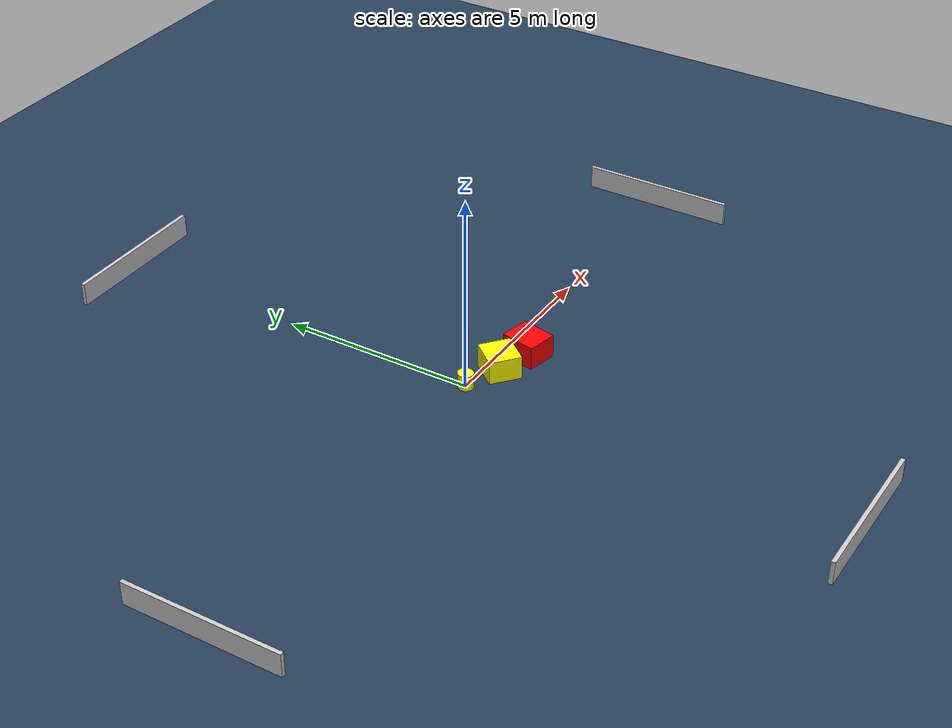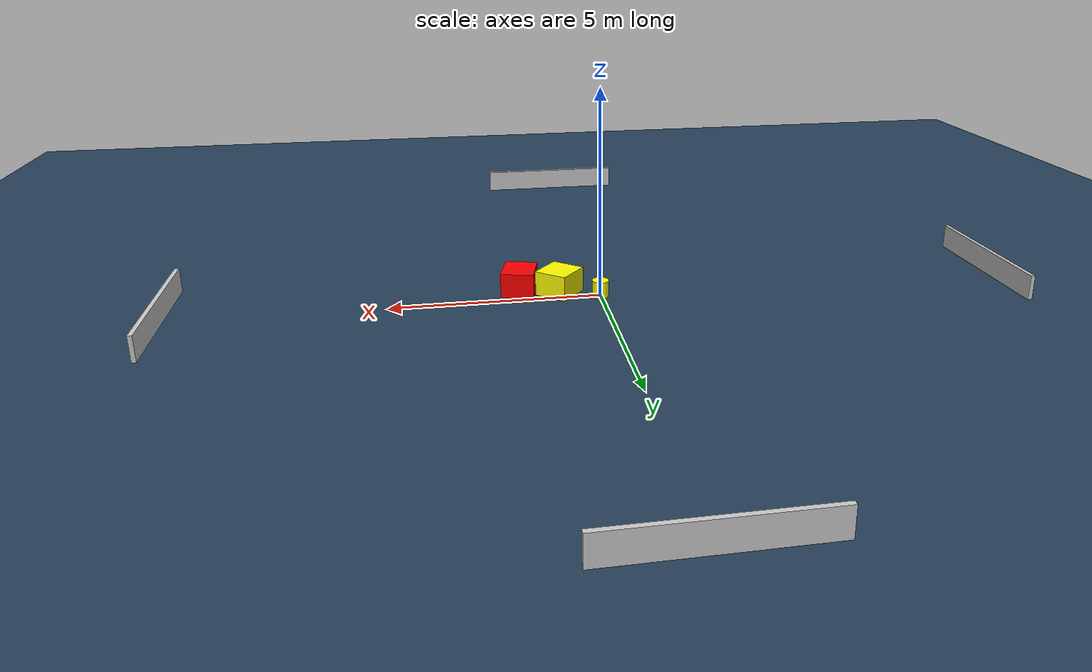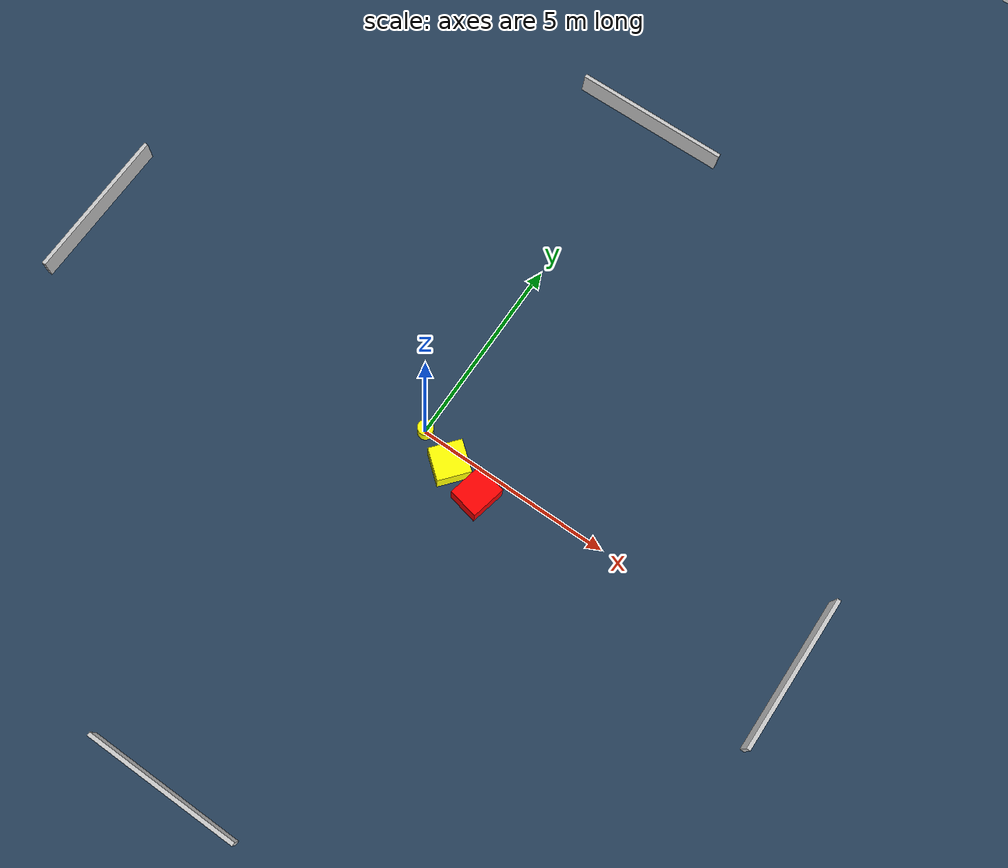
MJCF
<?xml version="1.0" ?>
<mujoco model="generated_environment">
  <option timestep="0.01" integrator="RK4" cone="elliptic"/>
  <default>
    <geom density="1"/>
  </default>
  <asset>
    <texture builtin="gradient" height="3072" name="skybox" rgb1="0.3 0.5 0.7" rgb2="0 0 0" type="skybox" width="512"/>
    <texture builtin="checker" height="300" name="groundplane" rgb1="0.2 0.3 0.4" rgb2="0.1 0.2 0.3" type="2d" width="300"/>
    <material name="groundplane" reflectance="0.2" texrepeat="5 5" texture="groundplane"/>
  </asset>
  <worldbody>
    <light dir="0 0 -1" directional="true" pos="0 0 1.5"/>
    <geom condim="3" friction="0.5 0.005 0.001" material="groundplane" name="floor" pos="0 0 0" size="0 0 0.05" type="plane"/>
    <body name="walls">
      <geom name="wall_1" condim="4" pos="-10.0 0.0 0.3" rgba="0.800000011920929 0.800000011920929 0.800000011920929 1.0" size="0.05 2.0 0.3" type="box"/>
      <geom name="wall_2" condim="4" pos="10.0 0.0 0.3" rgba="0.800000011920929 0.800000011920929 0.800000011920929 1.0" size="0.05 2.0 0.3" type="box"/>
      <geom name="wall_3" condim="4" pos="0.0 -10.0 0.3" rgba="0.800000011920929 0.800000011920929 0.800000011920929 1.0" size="2.0 0.05 0.3" type="box"/>
      <geom name="wall_4" condim="4" pos="0.0 10.0 0.3" rgba="0.800000011920929 0.800000011920929 0.800000011920929 1.0" size="2.0 0.05 0.3" type="box"/>
    </body>
    <body name="robot">
      <joint name="joint_x" type="slide" pos="0 0 0" axis="1 0 0"/>
      <joint name="joint_y" type="slide" pos="0 0 0" axis="0 1 0"/>
      <geom name="robot" type="cylinder" pos="0.0 0.0 0.2" size="0.2 0.2 0.0" mass="5.0" friction="1.0 0.005 0.0001" condim="4" rgba="1.0 1.0 0.0 1.0"/>
    </body>
    <body name="obstacle_1_movable">
      <geom name="obstacle_1_movable" condim="4" pos="0.9452367514760268 -0.3682595817685654 0.3" euler="0 0 140.31050860922244" friction="0.0 0.005 0.001" rgba="1.0 1.0 0.0 1.0" size="0.41159614792504184 0.4216481791123054 0.3" type="box" mass="0.1"/>
      <joint type="free"/>
    </body>
    <body name="obstacle_2_static">
      <geom name="obstacle_2_static" condim="4" pos="1.8865395753045913 -0.6096122248064315 0.3" euler="0 0 167.5088327013953" friction="0.0 0.005 0.001" rgba="1.0 0.0 0.0 1.0" size="0.3935648050673164 0.4550173769284217 0.3" type="box"/>
    </body>
  </worldbody>
  <actuator>
    <motor name="actuator_x" joint="joint_x" gear="1" ctrlrange="-1 1"/>
    <motor name="actuator_y" joint="joint_y" gear="1" ctrlrange="-1 1"/>
  </actuator>
</mujoco>
